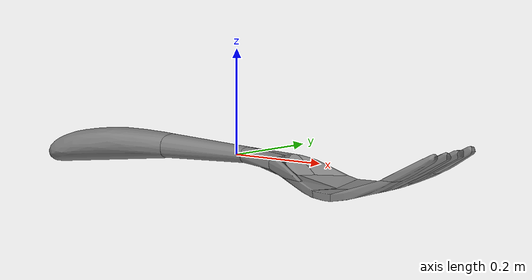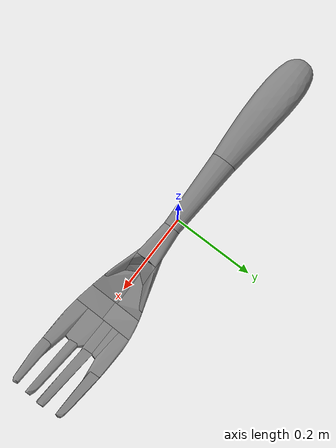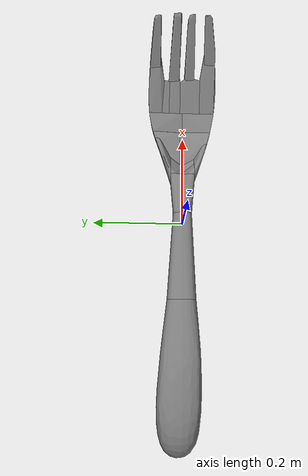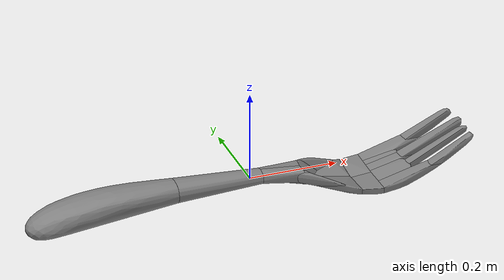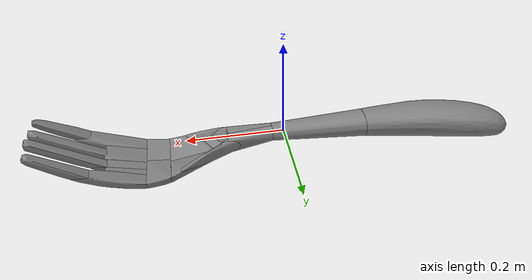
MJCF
<?xml version="1.0" ?>
<mujoco model="033_fork_3">
  <asset>
    <mesh name="033_fork_3_mesh" file="033_fork_3.stl" scale="1. 1. 1."/>
    <mesh name="033_fork_3_part_0" file="decomposed/033_fork_3_decomposed_0.stl" scale="1. 1. 1."/>
    <mesh name="033_fork_3_part_1" file="decomposed/033_fork_3_decomposed_1.stl" scale="1. 1. 1."/>
    <mesh name="033_fork_3_part_2" file="decomposed/033_fork_3_decomposed_2.stl" scale="1. 1. 1."/>
    <mesh name="033_fork_3_part_3" file="decomposed/033_fork_3_decomposed_3.stl" scale="1. 1. 1."/>
    <mesh name="033_fork_3_part_4" file="decomposed/033_fork_3_decomposed_4.stl" scale="1. 1. 1."/>
    <mesh name="033_fork_3_part_5" file="decomposed/033_fork_3_decomposed_5.stl" scale="1. 1. 1."/>
    <mesh name="033_fork_3_part_6" file="decomposed/033_fork_3_decomposed_6.stl" scale="1. 1. 1."/>
    <mesh name="033_fork_3_part_7" file="decomposed/033_fork_3_decomposed_7.stl" scale="1. 1. 1."/>
    <mesh name="033_fork_3_part_8" file="decomposed/033_fork_3_decomposed_8.stl" scale="1. 1. 1."/>
    <mesh name="033_fork_3_part_9" file="decomposed/033_fork_3_decomposed_9.stl" scale="1. 1. 1."/>
    <mesh name="033_fork_3_part_10" file="decomposed/033_fork_3_decomposed_10.stl" scale="1. 1. 1."/>
    <mesh name="033_fork_3_part_11" file="decomposed/033_fork_3_decomposed_11.stl" scale="1. 1. 1."/>
    <mesh name="033_fork_3_part_12" file="decomposed/033_fork_3_decomposed_12.stl" scale="1. 1. 1."/>
    <mesh name="033_fork_3_part_13" file="decomposed/033_fork_3_decomposed_13.stl" scale="1. 1. 1."/>
    <mesh name="033_fork_3_part_14" file="decomposed/033_fork_3_decomposed_14.stl" scale="1. 1. 1."/>
    <mesh name="033_fork_3_part_15" file="decomposed/033_fork_3_decomposed_15.stl" scale="1. 1. 1."/>
    <mesh name="033_fork_3_part_16" file="decomposed/033_fork_3_decomposed_16.stl" scale="1. 1. 1."/>
    <mesh name="033_fork_3_part_17" file="decomposed/033_fork_3_decomposed_17.stl" scale="1. 1. 1."/>
    <mesh name="033_fork_3_part_18" file="decomposed/033_fork_3_decomposed_18.stl" scale="1. 1. 1."/>
    <mesh name="033_fork_3_part_19" file="decomposed/033_fork_3_decomposed_19.stl" scale="1. 1. 1."/>
    <mesh name="033_fork_3_part_20" file="decomposed/033_fork_3_decomposed_20.stl" scale="1. 1. 1."/>
    <mesh name="033_fork_3_part_21" file="decomposed/033_fork_3_decomposed_21.stl" scale="1. 1. 1."/>
  </asset>
  <worldbody>
    <body name="033_fork_3">
      <geom name="033_fork_3_geom_0" type="mesh" mesh="033_fork_3_part_0"/>
      <geom name="033_fork_3_geom_1" type="mesh" mesh="033_fork_3_part_1"/>
      <geom name="033_fork_3_geom_2" type="mesh" mesh="033_fork_3_part_2"/>
      <geom name="033_fork_3_geom_3" type="mesh" mesh="033_fork_3_part_3"/>
      <geom name="033_fork_3_geom_4" type="mesh" mesh="033_fork_3_part_4"/>
      <geom name="033_fork_3_geom_5" type="mesh" mesh="033_fork_3_part_5"/>
      <geom name="033_fork_3_geom_6" type="mesh" mesh="033_fork_3_part_6"/>
      <geom name="033_fork_3_geom_7" type="mesh" mesh="033_fork_3_part_7"/>
      <geom name="033_fork_3_geom_8" type="mesh" mesh="033_fork_3_part_8"/>
      <geom name="033_fork_3_geom_9" type="mesh" mesh="033_fork_3_part_9"/>
      <geom name="033_fork_3_geom_10" type="mesh" mesh="033_fork_3_part_10"/>
      <geom name="033_fork_3_geom_11" type="mesh" mesh="033_fork_3_part_11"/>
      <geom name="033_fork_3_geom_12" type="mesh" mesh="033_fork_3_part_12"/>
      <geom name="033_fork_3_geom_13" type="mesh" mesh="033_fork_3_part_13"/>
      <geom name="033_fork_3_geom_14" type="mesh" mesh="033_fork_3_part_14"/>
      <geom name="033_fork_3_geom_15" type="mesh" mesh="033_fork_3_part_15"/>
      <geom name="033_fork_3_geom_16" type="mesh" mesh="033_fork_3_part_16"/>
      <geom name="033_fork_3_geom_17" type="mesh" mesh="033_fork_3_part_17"/>
      <geom name="033_fork_3_geom_18" type="mesh" mesh="033_fork_3_part_18"/>
      <geom name="033_fork_3_geom_19" type="mesh" mesh="033_fork_3_part_19"/>
      <geom name="033_fork_3_geom_20" type="mesh" mesh="033_fork_3_part_20"/>
      <geom name="033_fork_3_geom_21" type="mesh" mesh="033_fork_3_part_21"/>
    </body>
  </worldbody>
</mujoco>
